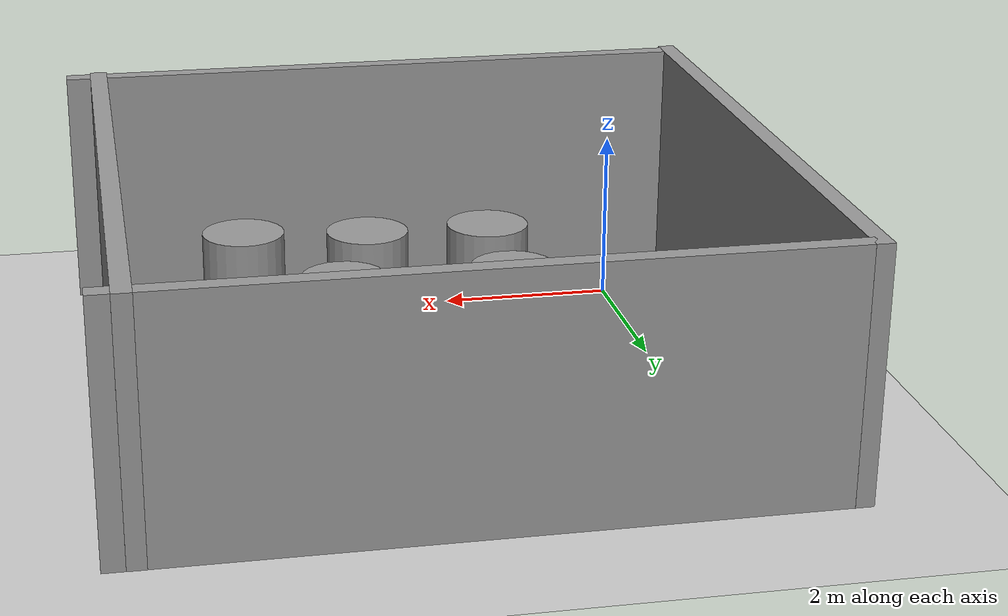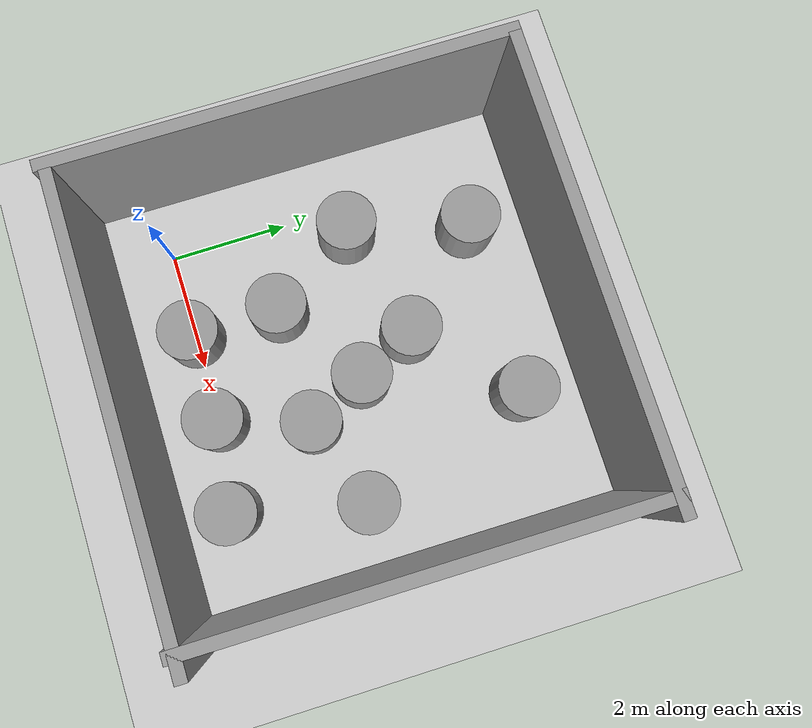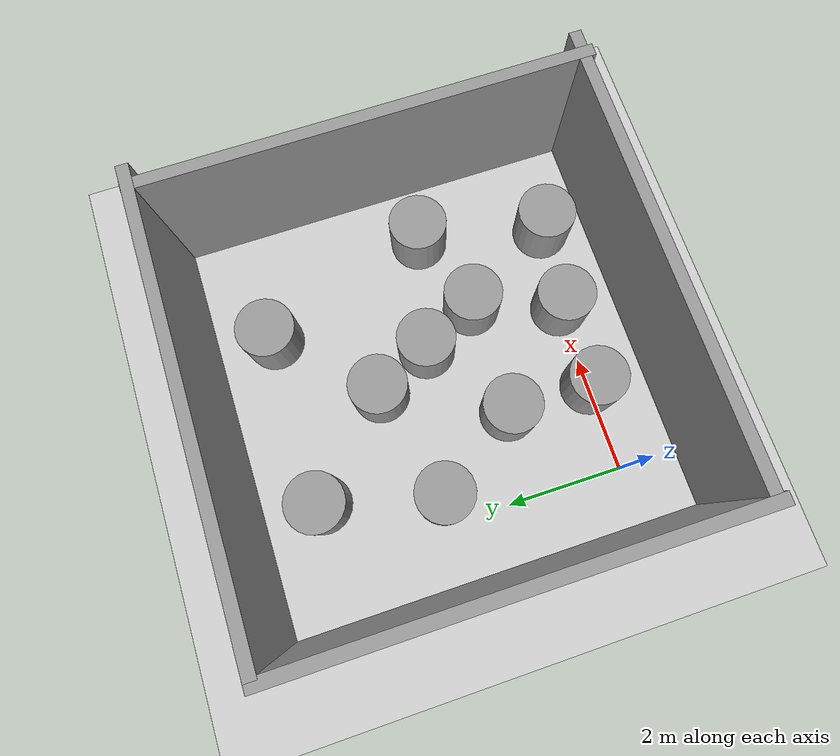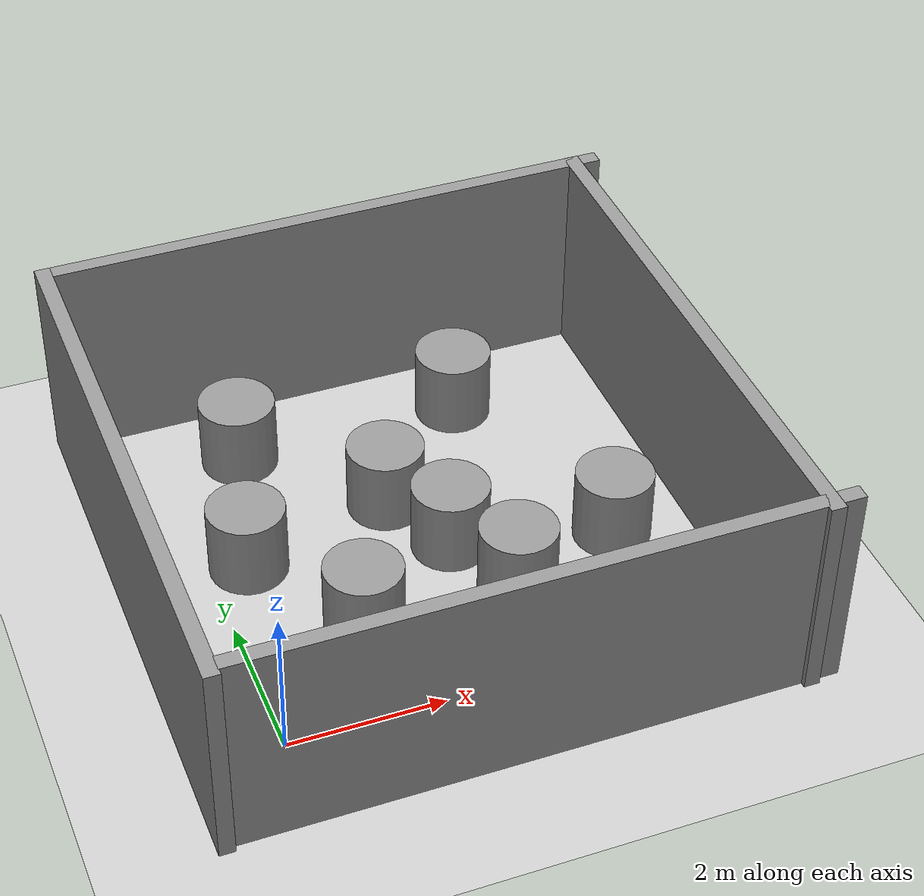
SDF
<sdf version="1.6">
 <world name="default">
  <light name="sun" type="directional">
   <pose>0 0 10 0 -0 0</pose>
   <diffuse>0.8 0.8 0.8 1</diffuse>
   <specular>0.1 0.1 0.1 1</specular>
   <attenuation>
    <range>1000</range>
    <constant>0.9</constant>
    <linear>0.01</linear>
    <quadratic>0.001</quadratic>
   </attenuation>
   <direction>-0.5 0.5 -1</direction>
  </light>
  <model name="ground_plane">
   <static>1</static>
   <link name="link">
    <collision name="collision">
     <geometry><plane><normal>0 0 1</normal><size>100 100</size></plane></geometry>
     <surface><friction><ode><mu>100</mu><mu2>50</mu2></ode></friction></surface>
    </collision>
    <visual name="visual">
     <cast_shadows>0</cast_shadows>
     <geometry><plane><normal>0 0 1</normal><size>100 100</size></plane></geometry>
     <material>
      <script><uri>file://media/materials/scripts/gazebo.material</uri><name>Gazebo/Grey</name></script>
     </material>
    </visual>
   </link>
  </model>
  <gravity>0 0 -9.8</gravity>
  <magnetic_field>6e-06 2.3e-05 -4.2e-05</magnetic_field>
  <atmosphere type="adiabatic"/>
  <physics name="default_physics" default="0" type="ode">
   <max_step_size>0.001</max_step_size>
   <real_time_factor>1</real_time_factor>
   <real_time_update_rate>1000</real_time_update_rate>
  </physics>
  <scene><ambient>0.4 0.4 0.4 1</ambient><background>0.7 0.7 0.7 1</background><shadows>1</shadows></scene>
  <spherical_coordinates>
   <surface_model>EARTH_WGS84</surface_model>
   <latitude_deg>0</latitude_deg>
   <longitude_deg>0</longitude_deg>
   <elevation>0</elevation>
   <heading_deg>0</heading_deg>
  </spherical_coordinates>
  <model name="grey_wall">
   <static>1</static>
   <link name="link">
    <pose>0 0 1.4 0 -0 0</pose>
    <collision name="collision"><geometry><box><size>7.5 0.2 2.8</size></box></geometry></collision>
    <visual name="visual">
     <cast_shadows>0</cast_shadows>
     <geometry><box><size>7.5 0.2 2.8</size></box></geometry>
     <material>
      <script>
       <uri>model://grey_wall/materials/scripts</uri>
       <uri>model://grey_wall/materials/textures</uri>
       <name>vrc/grey_wall</name>
      </script>
     </material>
    </visual>
   </link>
   <pose>2.75299 -1.11491 0 0 -0 0</pose>
  </model>
  <model name="grey_wall_clone">
   <static>1</static>
   <link name="link">
    <pose>0 0 1.4 0 -0 0</pose>
    <collision name="collision"><geometry><box><size>7.5 0.2 2.8</size></box></geometry></collision>
    <visual name="visual">
     <cast_shadows>0</cast_shadows>
     <geometry><box><size>7.5 0.2 2.8</size></box></geometry>
     <material>
      <script>
       <uri>model://grey_wall/materials/scripts</uri>
       <uri>model://grey_wall/materials/textures</uri>
       <name>vrc/grey_wall</name>
      </script>
     </material>
    </visual>
   </link>
   <pose>2.72519 6.10993 0 0 -0 0</pose>
  </model>
  <model name="grey_wall_clone_0">
   <static>1</static>
   <link name="link">
    <pose>0 0 1.4 0 -0 0</pose>
    <collision name="collision"><geometry><box><size>7.5 0.2 2.8</size></box></geometry></collision>
    <visual name="visual">
     <cast_shadows>0</cast_shadows>
     <geometry><box><size>7.5 0.2 2.8</size></box></geometry>
     <material>
      <script>
       <uri>model://grey_wall/materials/scripts</uri>
       <uri>model://grey_wall/materials/textures</uri>
       <name>vrc/grey_wall</name>
      </script>
     </material>
    </visual>
   </link>
   <pose>-1.07477 2.46072 0 0 -0 1.56808</pose>
  </model>
  <model name="grey_wall_clone_0_clone">
   <static>1</static>
   <link name="link">
    <pose>0 0 1.4 0 -0 0</pose>
    <collision name="collision"><geometry><box><size>7.5 0.2 2.8</size></box></geometry></collision>
    <visual name="visual">
     <cast_shadows>0</cast_shadows>
     <geometry><box><size>7.5 0.2 2.8</size></box></geometry>
     <material>
      <script>
       <uri>model://grey_wall/materials/scripts</uri>
       <uri>model://grey_wall/materials/textures</uri>
       <name>vrc/grey_wall</name>
      </script>
     </material>
    </visual>
   </link>
   <pose>6.12702 2.46337 0 0 -0 1.56808</pose>
  </model>
  <model name="unit_cylinder_0_0">
   <pose>1.5 1.5 0.499997 3e-06 1e-06 -0</pose>
   <link name="link">
    <inertial>
     <mass>1</mass>
     <inertia><ixx>0.145833</ixx><ixy>0</ixy><ixz>0</ixz><iyy>0.145833</iyy><iyz>0</iyz><izz>0.125</izz></inertia>
    </inertial>
    <collision name="collision">
     <geometry><cylinder><radius>0.5</radius><length>1</length></cylinder></geometry>
    </collision>
    <visual name="visual">
     <geometry><cylinder><radius>0.5</radius><length>1</length></cylinder></geometry>
     <material>
      <script><name>Gazebo/Grey</name><uri>file://media/materials/scripts/gazebo.material</uri></script>
     </material>
    </visual>
   </link>
  </model>
  <model name="unit_cylinder_0_0_clone">
   <pose>3 0 0.499991 0 -0 7.6e-05</pose>
   <link name="link">
    <inertial>
     <mass>1</mass>
     <inertia><ixx>0.145833</ixx><ixy>0</ixy><ixz>0</ixz><iyy>0.145833</iyy><iyz>0</iyz><izz>0.125</izz></inertia>
    </inertial>
    <collision name="collision">
     <geometry><cylinder><radius>0.5</radius><length>1</length></cylinder></geometry>
    </collision>
    <visual name="visual">
     <geometry><cylinder><radius>0.5</radius><length>1</length></cylinder></geometry>
     <material>
      <script><name>Gazebo/Grey</name><uri>file://media/materials/scripts/gazebo.material</uri></script>
     </material>
    </visual>
   </link>
  </model>
  <model name="unit_cylinder_0_0_clone_0">
   <pose>5 2 0.499997 3e-06 1e-06 -0</pose>
   <link name="link">
    <inertial>
     <mass>1</mass>
     <inertia><ixx>0.145833</ixx><ixy>0</ixy><ixz>0</ixz><iyy>0.145833</iyy><iyz>0</iyz><izz>0.125</izz></inertia>
    </inertial>
    <collision name="collision">
     <geometry><cylinder><radius>0.5</radius><length>1</length></cylinder></geometry>
    </collision>
    <visual name="visual">
     <geometry><cylinder><radius>0.5</radius><length>1</length></cylinder></geometry>
     <material>
      <script><name>Gazebo/Grey</name><uri>file://media/materials/scripts/gazebo.material</uri></script>
     </material>
    </visual>
   </link>
  </model>
  <model name="unit_cylinder_0_0_clone_1">
   <pose>3 2.5 0.499993 -3e-06 3e-06 -0.027221</pose>
   <link name="link">
    <inertial>
     <mass>1</mass>
     <inertia><ixx>0.145833</ixx><ixy>0</ixy><ixz>0</ixz><iyy>0.145833</iyy><iyz>0</iyz><izz>0.125</izz></inertia>
    </inertial>
    <collision name="collision">
     <geometry><cylinder><radius>0.5</radius><length>1</length></cylinder></geometry>
    </collision>
    <visual name="visual">
     <geometry><cylinder><radius>0.5</radius><length>1</length></cylinder></geometry>
     <material>
      <script><name>Gazebo/Grey</name><uri>file://media/materials/scripts/gazebo.material</uri></script>
     </material>
    </visual>
   </link>
  </model>
  <model name="unit_cylinder_0_0_clone_2">
   <pose>0.999999 5 0.499997 3e-06 1e-06 -0</pose>
   <link name="link">
    <inertial>
     <mass>1</mass>
     <inertia><ixx>0.145833</ixx><ixy>0</ixy><ixz>0</ixz><iyy>0.145833</iyy><iyz>0</iyz><izz>0.125</izz></inertia>
    </inertial>
    <collision name="collision">
     <geometry><cylinder><radius>0.5</radius><length>1</length></cylinder></geometry>
    </collision>
    <visual name="visual">
     <geometry><cylinder><radius>0.5</radius><length>1</length></cylinder></geometry>
     <material>
      <script><name>Gazebo/Grey</name><uri>file://media/materials/scripts/gazebo.material</uri></script>
     </material>
    </visual>
   </link>
  </model>
  <model name="unit_cylinder_0_0_clone_3">
   <pose>2.5 3.5 0.499996 -4e-06 -2e-06 -0</pose>
   <link name="link">
    <inertial>
     <mass>1</mass>
     <inertia><ixx>0.145833</ixx><ixy>0</ixy><ixz>0</ixz><iyy>0.145833</iyy><iyz>0</iyz><izz>0.125</izz></inertia>
    </inertial>
    <collision name="collision">
     <geometry><cylinder><radius>0.5</radius><length>1</length></cylinder></geometry>
    </collision>
    <visual name="visual">
     <geometry><cylinder><radius>0.5</radius><length>1</length></cylinder></geometry>
     <material>
      <script><name>Gazebo/Grey</name><uri>file://media/materials/scripts/gazebo.material</uri></script>
     </material>
    </visual>
   </link>
  </model>
  <model name="unit_cylinder_0_0_clone_4">
   <pose>3.5 1.5 0.499997 3e-06 1e-06 -0</pose>
   <link name="link">
    <inertial>
     <mass>1</mass>
     <inertia><ixx>0.145833</ixx><ixy>0</ixy><ixz>0</ixz><iyy>0.145833</iyy><iyz>0</iyz><izz>0.125</izz></inertia>
    </inertial>
    <collision name="collision">
     <geometry><cylinder><radius>0.5</radius><length>1</length></cylinder></geometry>
    </collision>
    <visual name="visual">
     <geometry><cylinder><radius>0.5</radius><length>1</length></cylinder></geometry>
     <material>
      <script><name>Gazebo/Grey</name><uri>file://media/materials/scripts/gazebo.material</uri></script>
     </material>
    </visual>
   </link>
  </model>
  <model name="unit_cylinder_0_0_clone_5">
   <pose>4 5 0.499993 -3e-06 -1e-06 -0</pose>
   <link name="link">
    <inertial>
     <mass>1</mass>
     <inertia><ixx>0.145833</ixx><ixy>0</ixy><ixz>0</ixz><iyy>0.145833</iyy><iyz>0</iyz><izz>0.125</izz></inertia>
    </inertial>
    <collision name="collision">
     <geometry><cylinder><radius>0.5</radius><length>1</length></cylinder></geometry>
    </collision>
    <visual name="visual">
     <geometry><cylinder><radius>0.5</radius><length>1</length></cylinder></geometry>
     <material>
      <script><name>Gazebo/Grey</name><uri>file://media/materials/scripts/gazebo.material</uri></script>
     </material>
    </visual>
   </link>
  </model>
  <model name="unit_cylinder_0_0_clone_6">
   <pose>0.499999 3 0.499994 -4e-06 -3e-06 -0</pose>
   <link name="link">
    <inertial>
     <mass>1</mass>
     <inertia><ixx>0.145833</ixx><ixy>0</ixy><ixz>0</ixz><iyy>0.145833</iyy><iyz>0</iyz><izz>0.125</izz></inertia>
    </inertial>
    <collision name="collision">
     <geometry><cylinder><radius>0.5</radius><length>1</length></cylinder></geometry>
    </collision>
    <visual name="visual">
     <geometry><cylinder><radius>0.5</radius><length>1</length></cylinder></geometry>
     <material>
      <script><name>Gazebo/Grey</name><uri>file://media/materials/scripts/gazebo.material</uri></script>
     </material>
    </visual>
   </link>
  </model>
  <model name="unit_cylinder_0_0_clone_7">
   <pose>4.5 -0.199999 0.499994 -4e-06 -3e-06 -0</pose>
   <link name="link">
    <inertial>
     <mass>1</mass>
     <inertia><ixx>0.145833</ixx><ixy>0</ixy><ixz>0</ixz><iyy>0.145833</iyy><iyz>0</iyz><izz>0.125</izz></inertia>
    </inertial>
    <collision name="collision">
     <geometry><cylinder><radius>0.5</radius><length>1</length></cylinder></geometry>
    </collision>
    <visual name="visual">
     <geometry><cylinder><radius>0.5</radius><length>1</length></cylinder></geometry>
     <material>
      <script><name>Gazebo/Grey</name><uri>file://media/materials/scripts/gazebo.material</uri></script>
     </material>
    </visual>
   </link>
  </model>
  <model name="unit_cylinder_0_0_clone_8">
   <pose>1.5 4e-06 0.499993 -3e-06 -2e-06 0</pose>
   <link name="link">
    <inertial>
     <mass>1</mass>
     <inertia><ixx>0.145833</ixx><ixy>0</ixy><ixz>0</ixz><iyy>0.145833</iyy><iyz>0</iyz><izz>0.125</izz></inertia>
    </inertial>
    <collision name="collision">
     <geometry><cylinder><radius>0.5</radius><length>1</length></cylinder></geometry>
    </collision>
    <visual name="visual">
     <geometry><cylinder><radius>0.5</radius><length>1</length></cylinder></geometry>
     <material>
      <script><name>Gazebo/Grey</name><uri>file://media/materials/scripts/gazebo.material</uri></script>
     </material>
    </visual>
   </link>
  </model>
 </world>
</sdf>
